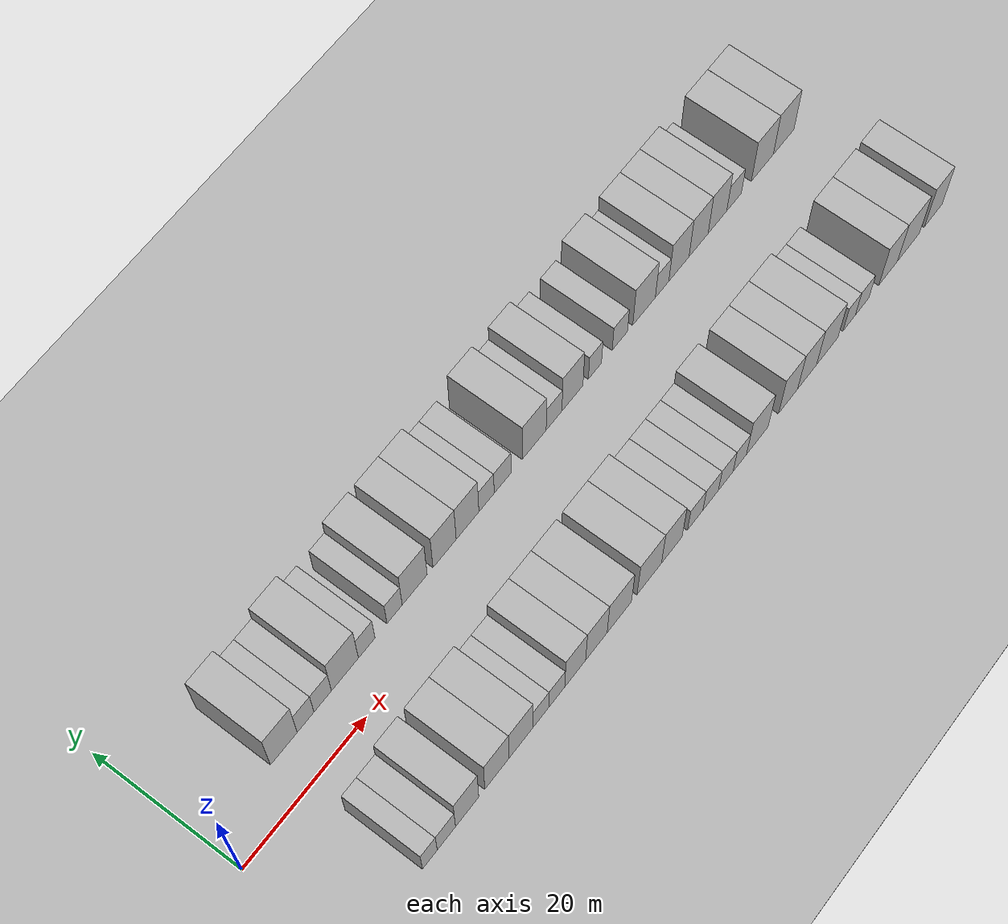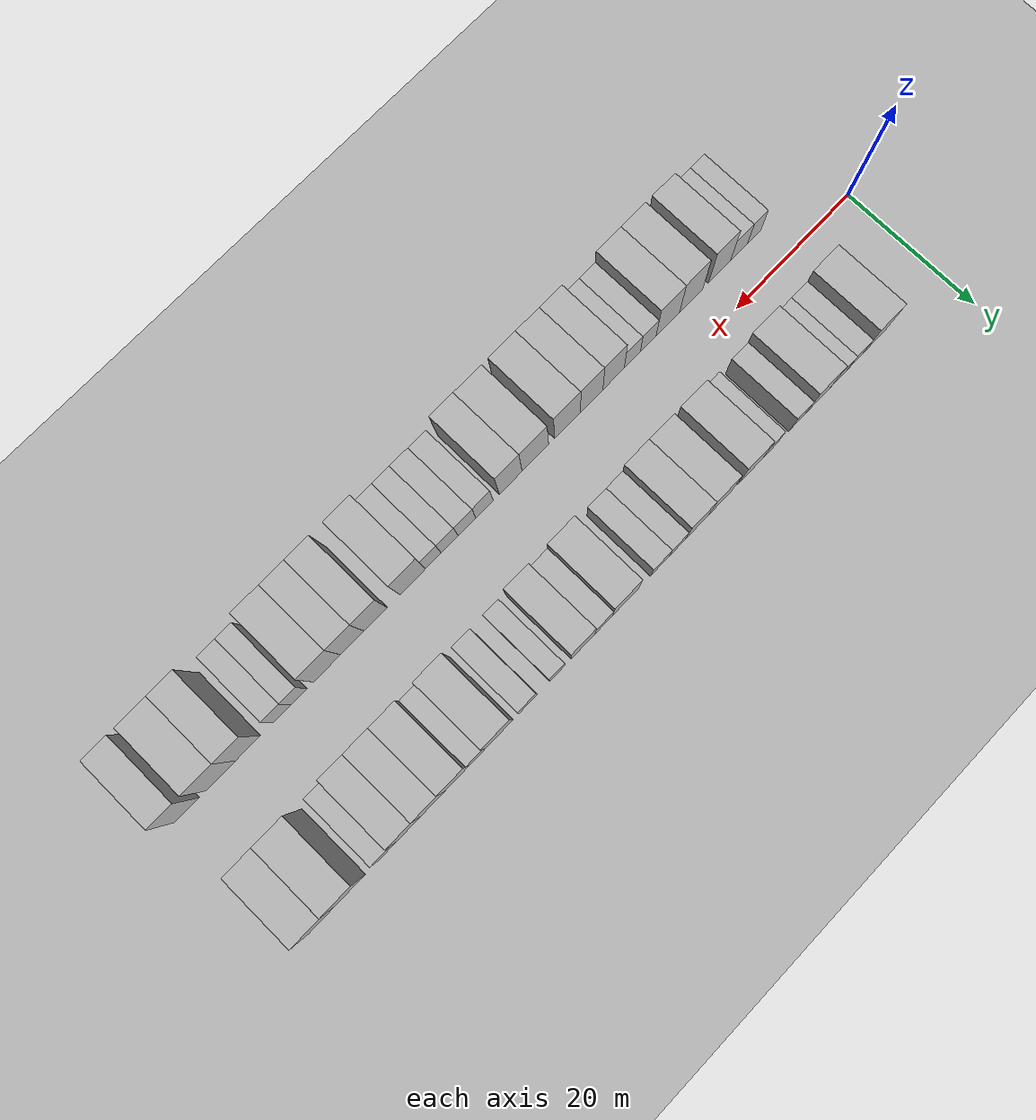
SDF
<sdf version="1.6">
 <world name="default">
  <include><name>ground_plane_1</name><uri>model://HANNAS_ground_plane</uri></include>
  <include>
   <name>ground_plane_2</name>
   <uri>model://HANNAS_ground_plane</uri>
   <pose>100 0 0  0 0 0</pose>
  </include>
  <model name="building_1">
   <static>1</static>
   <pose>12.1485 9.5000 0 0.000000 0.000000 1.570796</pose>
   <link name="link">
    <pose>0 0 4.50 0 0 0</pose>
    <collision name="collision"><geometry><box><size>10.0000 4.2969 9.0000</size></box></geometry></collision>
    <visual name="visual">
     <cast_shadows>0</cast_shadows>
     <geometry><box><size>10.0000 4.2969 9.0000</size></box></geometry>
     <material>
      <script>
       <uri>model://HANNAS_wall/materials/scripts</uri>
       <uri>model://HANNAS_wall/materials/textures</uri>
       <name>vrc/HANNAS_wall</name>
      </script>
     </material>
    </visual>
   </link>
  </model>
  <model name="building_2">
   <static>1</static>
   <pose>15.6557 9.5000 0 0.000000 0.000000 1.570796</pose>
   <link name="link">
    <pose>0 0 3.00 0 0 0</pose>
    <collision name="collision"><geometry><box><size>10.0000 2.7174 6.0000</size></box></geometry></collision>
    <visual name="visual">
     <cast_shadows>0</cast_shadows>
     <geometry><box><size>10.0000 2.7174 6.0000</size></box></geometry>
     <material>
      <script>
       <uri>model://HANNAS_wall/materials/scripts</uri>
       <uri>model://HANNAS_wall/materials/textures</uri>
       <name>vrc/HANNAS_wall</name>
      </script>
     </material>
    </visual>
   </link>
  </model>
  <model name="building_3">
   <static>1</static>
   <pose>18.4392 9.5000 0 0.000000 0.000000 1.570796</pose>
   <link name="link">
    <pose>0 0 3.00 0 0 0</pose>
    <collision name="collision"><geometry><box><size>10.0000 2.8497 6.0000</size></box></geometry></collision>
    <visual name="visual">
     <cast_shadows>0</cast_shadows>
     <geometry><box><size>10.0000 2.8497 6.0000</size></box></geometry>
     <material>
      <script>
       <uri>model://HANNAS_wall/materials/scripts</uri>
       <uri>model://HANNAS_wall/materials/textures</uri>
       <name>vrc/HANNAS_wall</name>
      </script>
     </material>
    </visual>
   </link>
  </model>
  <model name="building_4">
   <static>1</static>
   <pose>22.0854 9.5000 0 0.000000 0.000000 1.570796</pose>
   <link name="link">
    <pose>0 0 4.50 0 0 0</pose>
    <collision name="collision"><geometry><box><size>10.0000 4.4425 9.0000</size></box></geometry></collision>
    <visual name="visual">
     <cast_shadows>0</cast_shadows>
     <geometry><box><size>10.0000 4.4425 9.0000</size></box></geometry>
     <material>
      <script>
       <uri>model://HANNAS_wall/materials/scripts</uri>
       <uri>model://HANNAS_wall/materials/textures</uri>
       <name>vrc/HANNAS_wall</name>
      </script>
     </material>
    </visual>
   </link>
  </model>
  <model name="building_5">
   <static>1</static>
   <pose>25.6878 9.5000 0 0.000000 0.000000 1.570796</pose>
   <link name="link">
    <pose>0 0 3.00 0 0 0</pose>
    <collision name="collision"><geometry><box><size>10.0000 2.7624 6.0000</size></box></geometry></collision>
    <visual name="visual">
     <cast_shadows>0</cast_shadows>
     <geometry><box><size>10.0000 2.7624 6.0000</size></box></geometry>
     <material>
      <script>
       <uri>model://HANNAS_wall/materials/scripts</uri>
       <uri>model://HANNAS_wall/materials/textures</uri>
       <name>vrc/HANNAS_wall</name>
      </script>
     </material>
    </visual>
   </link>
  </model>
  <model name="building_6">
   <static>1</static>
   <pose>30.3585 9.5000 0 0.000000 0.000000 1.570796</pose>
   <link name="link">
    <pose>0 0 3.00 0 0 0</pose>
    <collision name="collision"><geometry><box><size>10.0000 2.5788 6.0000</size></box></geometry></collision>
    <visual name="visual">
     <cast_shadows>0</cast_shadows>
     <geometry><box><size>10.0000 2.5788 6.0000</size></box></geometry>
     <material>
      <script>
       <uri>model://HANNAS_wall/materials/scripts</uri>
       <uri>model://HANNAS_wall/materials/textures</uri>
       <name>vrc/HANNAS_wall</name>
      </script>
     </material>
    </visual>
   </link>
  </model>
  <model name="building_7">
   <static>1</static>
   <pose>33.7688 9.5000 0 0.000000 0.000000 1.570796</pose>
   <link name="link">
    <pose>0 0 4.50 0 0 0</pose>
    <collision name="collision"><geometry><box><size>10.0000 4.2418 9.0000</size></box></geometry></collision>
    <visual name="visual">
     <cast_shadows>0</cast_shadows>
     <geometry><box><size>10.0000 4.2418 9.0000</size></box></geometry>
     <material>
      <script>
       <uri>model://HANNAS_wall/materials/scripts</uri>
       <uri>model://HANNAS_wall/materials/textures</uri>
       <name>vrc/HANNAS_wall</name>
      </script>
     </material>
    </visual>
   </link>
  </model>
  <model name="building_8">
   <static>1</static>
   <pose>38.8870 9.5000 0 0.000000 0.000000 1.570796</pose>
   <link name="link">
    <pose>0 0 4.50 0 0 0</pose>
    <collision name="collision"><geometry><box><size>10.0000 3.9947 9.0000</size></box></geometry></collision>
    <visual name="visual">
     <cast_shadows>0</cast_shadows>
     <geometry><box><size>10.0000 3.9947 9.0000</size></box></geometry>
     <material>
      <script>
       <uri>model://HANNAS_wall/materials/scripts</uri>
       <uri>model://HANNAS_wall/materials/textures</uri>
       <name>vrc/HANNAS_wall</name>
      </script>
     </material>
    </visual>
   </link>
  </model>
  <model name="building_9">
   <static>1</static>
   <pose>42.8608 9.5000 0 0.000000 0.000000 1.570796</pose>
   <link name="link">
    <pose>0 0 4.50 0 0 0</pose>
    <collision name="collision"><geometry><box><size>10.0000 3.9528 9.0000</size></box></geometry></collision>
    <visual name="visual">
     <cast_shadows>0</cast_shadows>
     <geometry><box><size>10.0000 3.9528 9.0000</size></box></geometry>
     <material>
      <script>
       <uri>model://HANNAS_wall/materials/scripts</uri>
       <uri>model://HANNAS_wall/materials/textures</uri>
       <name>vrc/HANNAS_wall</name>
      </script>
     </material>
    </visual>
   </link>
  </model>
  <model name="building_10">
   <static>1</static>
   <pose>46.1827 9.5000 0 0.000000 0.000000 1.570796</pose>
   <link name="link">
    <pose>0 0 3.00 0 0 0</pose>
    <collision name="collision"><geometry><box><size>10.0000 2.6912 6.0000</size></box></geometry></collision>
    <visual name="visual">
     <cast_shadows>0</cast_shadows>
     <geometry><box><size>10.0000 2.6912 6.0000</size></box></geometry>
     <material>
      <script>
       <uri>model://HANNAS_wall/materials/scripts</uri>
       <uri>model://HANNAS_wall/materials/textures</uri>
       <name>vrc/HANNAS_wall</name>
      </script>
     </material>
    </visual>
   </link>
  </model>
  <model name="building_11">
   <static>1</static>
   <pose>49.0226 9.5000 0 0.000000 0.000000 1.570796</pose>
   <link name="link">
    <pose>0 0 3.00 0 0 0</pose>
    <collision name="collision"><geometry><box><size>10.0000 2.9886 6.0000</size></box></geometry></collision>
    <visual name="visual">
     <cast_shadows>0</cast_shadows>
     <geometry><box><size>10.0000 2.9886 6.0000</size></box></geometry>
     <material>
      <script>
       <uri>model://HANNAS_wall/materials/scripts</uri>
       <uri>model://HANNAS_wall/materials/textures</uri>
       <name>vrc/HANNAS_wall</name>
      </script>
     </material>
    </visual>
   </link>
  </model>
  <model name="building_12">
   <static>1</static>
   <pose>54.6593 9.5000 0 0.000000 0.000000 1.570796</pose>
   <link name="link">
    <pose>0 0 4.50 0 0 0</pose>
    <collision name="collision"><geometry><box><size>10.0000 4.2849 9.0000</size></box></geometry></collision>
    <visual name="visual">
     <cast_shadows>0</cast_shadows>
     <geometry><box><size>10.0000 4.2849 9.0000</size></box></geometry>
     <material>
      <script>
       <uri>model://HANNAS_wall/materials/scripts</uri>
       <uri>model://HANNAS_wall/materials/textures</uri>
       <name>vrc/HANNAS_wall</name>
      </script>
     </material>
    </visual>
   </link>
  </model>
  <model name="building_13">
   <static>1</static>
   <pose>58.2277 9.5000 0 0.000000 0.000000 1.570796</pose>
   <link name="link">
    <pose>0 0 3.00 0 0 0</pose>
    <collision name="collision"><geometry><box><size>10.0000 2.8518 6.0000</size></box></geometry></collision>
    <visual name="visual">
     <cast_shadows>0</cast_shadows>
     <geometry><box><size>10.0000 2.8518 6.0000</size></box></geometry>
     <material>
      <script>
       <uri>model://HANNAS_wall/materials/scripts</uri>
       <uri>model://HANNAS_wall/materials/textures</uri>
       <name>vrc/HANNAS_wall</name>
      </script>
     </material>
    </visual>
   </link>
  </model>
  <model name="building_14">
   <static>1</static>
   <pose>61.5808 9.5000 0 0.000000 0.000000 1.570796</pose>
   <link name="link">
    <pose>0 0 4.50 0 0 0</pose>
    <collision name="collision"><geometry><box><size>10.0000 3.8543 9.0000</size></box></geometry></collision>
    <visual name="visual">
     <cast_shadows>0</cast_shadows>
     <geometry><box><size>10.0000 3.8543 9.0000</size></box></geometry>
     <material>
      <script>
       <uri>model://HANNAS_wall/materials/scripts</uri>
       <uri>model://HANNAS_wall/materials/textures</uri>
       <name>vrc/HANNAS_wall</name>
      </script>
     </material>
    </visual>
   </link>
  </model>
  <model name="building_15">
   <static>1</static>
   <pose>65.7186 9.5000 0 0.000000 0.000000 1.570796</pose>
   <link name="link">
    <pose>0 0 3.00 0 0 0</pose>
    <collision name="collision"><geometry><box><size>10.0000 2.4212 6.0000</size></box></geometry></collision>
    <visual name="visual">
     <cast_shadows>0</cast_shadows>
     <geometry><box><size>10.0000 2.4212 6.0000</size></box></geometry>
     <material>
      <script>
       <uri>model://HANNAS_wall/materials/scripts</uri>
       <uri>model://HANNAS_wall/materials/textures</uri>
       <name>vrc/HANNAS_wall</name>
      </script>
     </material>
    </visual>
   </link>
  </model>
  <model name="building_16">
   <static>1</static>
   <pose>70.3492 9.5000 0 0.000000 0.000000 1.570796</pose>
   <link name="link">
    <pose>0 0 3.00 0 0 0</pose>
    <collision name="collision"><geometry><box><size>10.0000 2.8400 6.0000</size></box></geometry></collision>
    <visual name="visual">
     <cast_shadows>0</cast_shadows>
     <geometry><box><size>10.0000 2.8400 6.0000</size></box></geometry>
     <material>
      <script>
       <uri>model://HANNAS_wall/materials/scripts</uri>
       <uri>model://HANNAS_wall/materials/textures</uri>
       <name>vrc/HANNAS_wall</name>
      </script>
     </material>
    </visual>
   </link>
  </model>
  <model name="building_17">
   <static>1</static>
   <pose>74.9035 9.5000 0 0.000000 0.000000 1.570796</pose>
   <link name="link">
    <pose>0 0 4.50 0 0 0</pose>
    <collision name="collision"><geometry><box><size>10.0000 4.2686 9.0000</size></box></geometry></collision>
    <visual name="visual">
     <cast_shadows>0</cast_shadows>
     <geometry><box><size>10.0000 4.2686 9.0000</size></box></geometry>
     <material>
      <script>
       <uri>model://HANNAS_wall/materials/scripts</uri>
       <uri>model://HANNAS_wall/materials/textures</uri>
       <name>vrc/HANNAS_wall</name>
      </script>
     </material>
    </visual>
   </link>
  </model>
  <model name="building_18">
   <static>1</static>
   <pose>78.3266 9.5000 0 0.000000 0.000000 1.570796</pose>
   <link name="link">
    <pose>0 0 3.00 0 0 0</pose>
    <collision name="collision"><geometry><box><size>10.0000 2.5777 6.0000</size></box></geometry></collision>
    <visual name="visual">
     <cast_shadows>0</cast_shadows>
     <geometry><box><size>10.0000 2.5777 6.0000</size></box></geometry>
     <material>
      <script>
       <uri>model://HANNAS_wall/materials/scripts</uri>
       <uri>model://HANNAS_wall/materials/textures</uri>
       <name>vrc/HANNAS_wall</name>
      </script>
     </material>
    </visual>
   </link>
  </model>
  <model name="building_19">
   <static>1</static>
   <pose>81.5625 9.5000 0 0.000000 0.000000 1.570796</pose>
   <link name="link">
    <pose>0 0 4.50 0 0 0</pose>
    <collision name="collision"><geometry><box><size>10.0000 3.8939 9.0000</size></box></geometry></collision>
    <visual name="visual">
     <cast_shadows>0</cast_shadows>
     <geometry><box><size>10.0000 3.8939 9.0000</size></box></geometry>
     <material>
      <script>
       <uri>model://HANNAS_wall/materials/scripts</uri>
       <uri>model://HANNAS_wall/materials/textures</uri>
       <name>vrc/HANNAS_wall</name>
      </script>
     </material>
    </visual>
   </link>
  </model>
  <model name="building_20">
   <static>1</static>
   <pose>85.3593 9.5000 0 0.000000 0.000000 1.570796</pose>
   <link name="link">
    <pose>0 0 4.50 0 0 0</pose>
    <collision name="collision"><geometry><box><size>10.0000 3.6998 9.0000</size></box></geometry></collision>
    <visual name="visual">
     <cast_shadows>0</cast_shadows>
     <geometry><box><size>10.0000 3.6998 9.0000</size></box></geometry>
     <material>
      <script>
       <uri>model://HANNAS_wall/materials/scripts</uri>
       <uri>model://HANNAS_wall/materials/textures</uri>
       <name>vrc/HANNAS_wall</name>
      </script>
     </material>
    </visual>
   </link>
  </model>
  <model name="building_21">
   <static>1</static>
   <pose>89.0442 9.5000 0 0.000000 0.000000 1.570796</pose>
   <link name="link">
    <pose>0 0 4.50 0 0 0</pose>
    <collision name="collision"><geometry><box><size>10.0000 3.6701 9.0000</size></box></geometry></collision>
    <visual name="visual">
     <cast_shadows>0</cast_shadows>
     <geometry><box><size>10.0000 3.6701 9.0000</size></box></geometry>
     <material>
      <script>
       <uri>model://HANNAS_wall/materials/scripts</uri>
       <uri>model://HANNAS_wall/materials/textures</uri>
       <name>vrc/HANNAS_wall</name>
      </script>
     </material>
    </visual>
   </link>
  </model>
  <model name="building_22">
   <static>1</static>
   <pose>92.3200 9.5000 0 0.000000 0.000000 1.570796</pose>
   <link name="link">
    <pose>0 0 3.00 0 0 0</pose>
    <collision name="collision"><geometry><box><size>10.0000 2.8814 6.0000</size></box></geometry></collision>
    <visual name="visual">
     <cast_shadows>0</cast_shadows>
     <geometry><box><size>10.0000 2.8814 6.0000</size></box></geometry>
     <material>
      <script>
       <uri>model://HANNAS_wall/materials/scripts</uri>
       <uri>model://HANNAS_wall/materials/textures</uri>
       <name>vrc/HANNAS_wall</name>
      </script>
     </material>
    </visual>
   </link>
  </model>
  <model name="building_23">
   <static>1</static>
   <pose>97.9645 9.5000 0 0.000000 0.000000 1.570796</pose>
   <link name="link">
    <pose>0 0 4.50 0 0 0</pose>
    <collision name="collision"><geometry><box><size>10.0000 4.4076 9.0000</size></box></geometry></collision>
    <visual name="visual">
     <cast_shadows>0</cast_shadows>
     <geometry><box><size>10.0000 4.4076 9.0000</size></box></geometry>
     <material>
      <script>
       <uri>model://HANNAS_wall/materials/scripts</uri>
       <uri>model://HANNAS_wall/materials/textures</uri>
       <name>vrc/HANNAS_wall</name>
      </script>
     </material>
    </visual>
   </link>
  </model>
  <model name="building_24">
   <static>1</static>
   <pose>102.2498 9.5000 0 0.000000 0.000000 1.570796</pose>
   <link name="link">
    <pose>0 0 4.50 0 0 0</pose>
    <collision name="collision"><geometry><box><size>10.0000 4.1629 9.0000</size></box></geometry></collision>
    <visual name="visual">
     <cast_shadows>0</cast_shadows>
     <geometry><box><size>10.0000 4.1629 9.0000</size></box></geometry>
     <material>
      <script>
       <uri>model://HANNAS_wall/materials/scripts</uri>
       <uri>model://HANNAS_wall/materials/textures</uri>
       <name>vrc/HANNAS_wall</name>
      </script>
     </material>
    </visual>
   </link>
  </model>
  <model name="building_50">
   <static>1</static>
   <pose>12.2003 -9.5000 0 0.000000 0.000000 1.570796</pose>
   <link name="link">
    <pose>0 0 3.00 0 0 0</pose>
    <collision name="collision"><geometry><box><size>10.0000 2.4007 6.0000</size></box></geometry></collision>
    <visual name="visual">
     <cast_shadows>0</cast_shadows>
     <geometry><box><size>10.0000 2.4007 6.0000</size></box></geometry>
     <material>
      <script>
       <uri>model://HANNAS_wall/materials/scripts</uri>
       <uri>model://HANNAS_wall/materials/textures</uri>
       <name>vrc/HANNAS_wall</name>
      </script>
     </material>
    </visual>
   </link>
  </model>
  <model name="building_51">
   <static>1</static>
   <pose>14.8979 -9.5000 0 0.000000 0.000000 1.570796</pose>
   <link name="link">
    <pose>0 0 3.00 0 0 0</pose>
    <collision name="collision"><geometry><box><size>10.0000 2.9944 6.0000</size></box></geometry></collision>
    <visual name="visual">
     <cast_shadows>0</cast_shadows>
     <geometry><box><size>10.0000 2.9944 6.0000</size></box></geometry>
     <material>
      <script>
       <uri>model://HANNAS_wall/materials/scripts</uri>
       <uri>model://HANNAS_wall/materials/textures</uri>
       <name>vrc/HANNAS_wall</name>
      </script>
     </material>
    </visual>
   </link>
  </model>
  <model name="building_52">
   <static>1</static>
   <pose>18.3170 -9.5000 0 0.000000 0.000000 1.570796</pose>
   <link name="link">
    <pose>0 0 4.50 0 0 0</pose>
    <collision name="collision"><geometry><box><size>10.0000 3.8438 9.0000</size></box></geometry></collision>
    <visual name="visual">
     <cast_shadows>0</cast_shadows>
     <geometry><box><size>10.0000 3.8438 9.0000</size></box></geometry>
     <material>
      <script>
       <uri>model://HANNAS_wall/materials/scripts</uri>
       <uri>model://HANNAS_wall/materials/textures</uri>
       <name>vrc/HANNAS_wall</name>
      </script>
     </material>
    </visual>
   </link>
  </model>
  <model name="building_53">
   <static>1</static>
   <pose>23.2656 -9.5000 0 0.000000 0.000000 1.570796</pose>
   <link name="link">
    <pose>0 0 4.50 0 0 0</pose>
    <collision name="collision"><geometry><box><size>10.0000 4.0535 9.0000</size></box></geometry></collision>
    <visual name="visual">
     <cast_shadows>0</cast_shadows>
     <geometry><box><size>10.0000 4.0535 9.0000</size></box></geometry>
     <material>
      <script>
       <uri>model://HANNAS_wall/materials/scripts</uri>
       <uri>model://HANNAS_wall/materials/textures</uri>
       <name>vrc/HANNAS_wall</name>
      </script>
     </material>
    </visual>
   </link>
  </model>
  <model name="building_54">
   <static>1</static>
   <pose>27.3266 -9.5000 0 0.000000 0.000000 1.570796</pose>
   <link name="link">
    <pose>0 0 4.50 0 0 0</pose>
    <collision name="collision"><geometry><box><size>10.0000 4.0686 9.0000</size></box></geometry></collision>
    <visual name="visual">
     <cast_shadows>0</cast_shadows>
     <geometry><box><size>10.0000 4.0686 9.0000</size></box></geometry>
     <material>
      <script>
       <uri>model://HANNAS_wall/materials/scripts</uri>
       <uri>model://HANNAS_wall/materials/textures</uri>
       <name>vrc/HANNAS_wall</name>
      </script>
     </material>
    </visual>
   </link>
  </model>
  <model name="building_55">
   <static>1</static>
   <pose>30.7042 -9.5000 0 0.000000 0.000000 1.570796</pose>
   <link name="link">
    <pose>0 0 3.00 0 0 0</pose>
    <collision name="collision"><geometry><box><size>10.0000 2.6865 6.0000</size></box></geometry></collision>
    <visual name="visual">
     <cast_shadows>0</cast_shadows>
     <geometry><box><size>10.0000 2.6865 6.0000</size></box></geometry>
     <material>
      <script>
       <uri>model://HANNAS_wall/materials/scripts</uri>
       <uri>model://HANNAS_wall/materials/textures</uri>
       <name>vrc/HANNAS_wall</name>
      </script>
     </material>
    </visual>
   </link>
  </model>
  <model name="building_56">
   <static>1</static>
   <pose>33.4240 -9.5000 0 0.000000 0.000000 1.570796</pose>
   <link name="link">
    <pose>0 0 3.00 0 0 0</pose>
    <collision name="collision"><geometry><box><size>10.0000 2.7532 6.0000</size></box></geometry></collision>
    <visual name="visual">
     <cast_shadows>0</cast_shadows>
     <geometry><box><size>10.0000 2.7532 6.0000</size></box></geometry>
     <material>
      <script>
       <uri>model://HANNAS_wall/materials/scripts</uri>
       <uri>model://HANNAS_wall/materials/textures</uri>
       <name>vrc/HANNAS_wall</name>
      </script>
     </material>
    </visual>
   </link>
  </model>
  <model name="building_57">
   <static>1</static>
   <pose>36.6123 -9.5000 0 0.000000 0.000000 1.570796</pose>
   <link name="link">
    <pose>0 0 4.50 0 0 0</pose>
    <collision name="collision"><geometry><box><size>10.0000 3.6234 9.0000</size></box></geometry></collision>
    <visual name="visual">
     <cast_shadows>0</cast_shadows>
     <geometry><box><size>10.0000 3.6234 9.0000</size></box></geometry>
     <material>
      <script>
       <uri>model://HANNAS_wall/materials/scripts</uri>
       <uri>model://HANNAS_wall/materials/textures</uri>
       <name>vrc/HANNAS_wall</name>
      </script>
     </material>
    </visual>
   </link>
  </model>
  <model name="building_58">
   <static>1</static>
   <pose>40.3140 -9.5000 0 0.000000 0.000000 1.570796</pose>
   <link name="link">
    <pose>0 0 4.50 0 0 0</pose>
    <collision name="collision"><geometry><box><size>10.0000 3.7800 9.0000</size></box></geometry></collision>
    <visual name="visual">
     <cast_shadows>0</cast_shadows>
     <geometry><box><size>10.0000 3.7800 9.0000</size></box></geometry>
     <material>
      <script>
       <uri>model://HANNAS_wall/materials/scripts</uri>
       <uri>model://HANNAS_wall/materials/textures</uri>
       <name>vrc/HANNAS_wall</name>
      </script>
     </material>
    </visual>
   </link>
  </model>
  <model name="building_59">
   <static>1</static>
   <pose>44.3622 -9.5000 0 0.000000 0.000000 1.570796</pose>
   <link name="link">
    <pose>0 0 4.50 0 0 0</pose>
    <collision name="collision"><geometry><box><size>10.0000 4.3164 9.0000</size></box></geometry></collision>
    <visual name="visual">
     <cast_shadows>0</cast_shadows>
     <geometry><box><size>10.0000 4.3164 9.0000</size></box></geometry>
     <material>
      <script>
       <uri>model://HANNAS_wall/materials/scripts</uri>
       <uri>model://HANNAS_wall/materials/textures</uri>
       <name>vrc/HANNAS_wall</name>
      </script>
     </material>
    </visual>
   </link>
  </model>
  <model name="building_60">
   <static>1</static>
   <pose>49.7163 -9.5000 0 0.000000 0.000000 1.570796</pose>
   <link name="link">
    <pose>0 0 4.50 0 0 0</pose>
    <collision name="collision"><geometry><box><size>10.0000 4.3918 9.0000</size></box></geometry></collision>
    <visual name="visual">
     <cast_shadows>0</cast_shadows>
     <geometry><box><size>10.0000 4.3918 9.0000</size></box></geometry>
     <material>
      <script>
       <uri>model://HANNAS_wall/materials/scripts</uri>
       <uri>model://HANNAS_wall/materials/textures</uri>
       <name>vrc/HANNAS_wall</name>
      </script>
     </material>
    </visual>
   </link>
  </model>
  <model name="building_61">
   <static>1</static>
   <pose>53.7856 -9.5000 0 0.000000 0.000000 1.570796</pose>
   <link name="link">
    <pose>0 0 4.50 0 0 0</pose>
    <collision name="collision"><geometry><box><size>10.0000 3.7468 9.0000</size></box></geometry></collision>
    <visual name="visual">
     <cast_shadows>0</cast_shadows>
     <geometry><box><size>10.0000 3.7468 9.0000</size></box></geometry>
     <material>
      <script>
       <uri>model://HANNAS_wall/materials/scripts</uri>
       <uri>model://HANNAS_wall/materials/textures</uri>
       <name>vrc/HANNAS_wall</name>
      </script>
     </material>
    </visual>
   </link>
  </model>
  <model name="building_62">
   <static>1</static>
   <pose>58.0690 -9.5000 0 0.000000 0.000000 1.570796</pose>
   <link name="link">
    <pose>0 0 3.00 0 0 0</pose>
    <collision name="collision"><geometry><box><size>10.0000 2.8201 6.0000</size></box></geometry></collision>
    <visual name="visual">
     <cast_shadows>0</cast_shadows>
     <geometry><box><size>10.0000 2.8201 6.0000</size></box></geometry>
     <material>
      <script>
       <uri>model://HANNAS_wall/materials/scripts</uri>
       <uri>model://HANNAS_wall/materials/textures</uri>
       <name>vrc/HANNAS_wall</name>
      </script>
     </material>
    </visual>
   </link>
  </model>
  <model name="building_63">
   <static>1</static>
   <pose>60.9207 -9.5000 0 0.000000 0.000000 1.570796</pose>
   <link name="link">
    <pose>0 0 3.00 0 0 0</pose>
    <collision name="collision"><geometry><box><size>10.0000 2.8832 6.0000</size></box></geometry></collision>
    <visual name="visual">
     <cast_shadows>0</cast_shadows>
     <geometry><box><size>10.0000 2.8832 6.0000</size></box></geometry>
     <material>
      <script>
       <uri>model://HANNAS_wall/materials/scripts</uri>
       <uri>model://HANNAS_wall/materials/textures</uri>
       <name>vrc/HANNAS_wall</name>
      </script>
     </material>
    </visual>
   </link>
  </model>
  <model name="building_64">
   <static>1</static>
   <pose>63.7338 -9.5000 0 0.000000 0.000000 1.570796</pose>
   <link name="link">
    <pose>0 0 3.00 0 0 0</pose>
    <collision name="collision"><geometry><box><size>10.0000 2.7431 6.0000</size></box></geometry></collision>
    <visual name="visual">
     <cast_shadows>0</cast_shadows>
     <geometry><box><size>10.0000 2.7431 6.0000</size></box></geometry>
     <material>
      <script>
       <uri>model://HANNAS_wall/materials/scripts</uri>
       <uri>model://HANNAS_wall/materials/textures</uri>
       <name>vrc/HANNAS_wall</name>
      </script>
     </material>
    </visual>
   </link>
  </model>
  <model name="building_65">
   <static>1</static>
   <pose>66.3600 -9.5000 0 0.000000 0.000000 1.570796</pose>
   <link name="link">
    <pose>0 0 3.00 0 0 0</pose>
    <collision name="collision"><geometry><box><size>10.0000 2.5092 6.0000</size></box></geometry></collision>
    <visual name="visual">
     <cast_shadows>0</cast_shadows>
     <geometry><box><size>10.0000 2.5092 6.0000</size></box></geometry>
     <material>
      <script>
       <uri>model://HANNAS_wall/materials/scripts</uri>
       <uri>model://HANNAS_wall/materials/textures</uri>
       <name>vrc/HANNAS_wall</name>
      </script>
     </material>
    </visual>
   </link>
  </model>
  <model name="building_66">
   <static>1</static>
   <pose>69.6719 -9.5000 0 0.000000 0.000000 1.570796</pose>
   <link name="link">
    <pose>0 0 4.50 0 0 0</pose>
    <collision name="collision"><geometry><box><size>10.0000 4.1146 9.0000</size></box></geometry></collision>
    <visual name="visual">
     <cast_shadows>0</cast_shadows>
     <geometry><box><size>10.0000 4.1146 9.0000</size></box></geometry>
     <material>
      <script>
       <uri>model://HANNAS_wall/materials/scripts</uri>
       <uri>model://HANNAS_wall/materials/textures</uri>
       <name>vrc/HANNAS_wall</name>
      </script>
     </material>
    </visual>
   </link>
  </model>
  <model name="building_67">
   <static>1</static>
   <pose>75.5628 -9.5000 0 0.000000 0.000000 1.570796</pose>
   <link name="link">
    <pose>0 0 4.50 0 0 0</pose>
    <collision name="collision"><geometry><box><size>10.0000 3.6673 9.0000</size></box></geometry></collision>
    <visual name="visual">
     <cast_shadows>0</cast_shadows>
     <geometry><box><size>10.0000 3.6673 9.0000</size></box></geometry>
     <material>
      <script>
       <uri>model://HANNAS_wall/materials/scripts</uri>
       <uri>model://HANNAS_wall/materials/textures</uri>
       <name>vrc/HANNAS_wall</name>
      </script>
     </material>
    </visual>
   </link>
  </model>
  <model name="building_68">
   <static>1</static>
   <pose>79.2327 -9.5000 0 0.000000 0.000000 1.570796</pose>
   <link name="link">
    <pose>0 0 4.50 0 0 0</pose>
    <collision name="collision"><geometry><box><size>10.0000 3.6726 9.0000</size></box></geometry></collision>
    <visual name="visual">
     <cast_shadows>0</cast_shadows>
     <geometry><box><size>10.0000 3.6726 9.0000</size></box></geometry>
     <material>
      <script>
       <uri>model://HANNAS_wall/materials/scripts</uri>
       <uri>model://HANNAS_wall/materials/textures</uri>
       <name>vrc/HANNAS_wall</name>
      </script>
     </material>
    </visual>
   </link>
  </model>
  <model name="building_69">
   <static>1</static>
   <pose>83.1784 -9.5000 0 0.000000 0.000000 1.570796</pose>
   <link name="link">
    <pose>0 0 4.50 0 0 0</pose>
    <collision name="collision"><geometry><box><size>10.0000 4.2188 9.0000</size></box></geometry></collision>
    <visual name="visual">
     <cast_shadows>0</cast_shadows>
     <geometry><box><size>10.0000 4.2188 9.0000</size></box></geometry>
     <material>
      <script>
       <uri>model://HANNAS_wall/materials/scripts</uri>
       <uri>model://HANNAS_wall/materials/textures</uri>
       <name>vrc/HANNAS_wall</name>
      </script>
     </material>
    </visual>
   </link>
  </model>
  <model name="building_70">
   <static>1</static>
   <pose>87.5057 -9.5000 0 0.000000 0.000000 1.570796</pose>
   <link name="link">
    <pose>0 0 3.00 0 0 0</pose>
    <collision name="collision"><geometry><box><size>10.0000 2.4358 6.0000</size></box></geometry></collision>
    <visual name="visual">
     <cast_shadows>0</cast_shadows>
     <geometry><box><size>10.0000 2.4358 6.0000</size></box></geometry>
     <material>
      <script>
       <uri>model://HANNAS_wall/materials/scripts</uri>
       <uri>model://HANNAS_wall/materials/textures</uri>
       <name>vrc/HANNAS_wall</name>
      </script>
     </material>
    </visual>
   </link>
  </model>
  <model name="building_71">
   <static>1</static>
   <pose>90.0866 -9.5000 0 0.000000 0.000000 1.570796</pose>
   <link name="link">
    <pose>0 0 3.00 0 0 0</pose>
    <collision name="collision"><geometry><box><size>10.0000 2.7261 6.0000</size></box></geometry></collision>
    <visual name="visual">
     <cast_shadows>0</cast_shadows>
     <geometry><box><size>10.0000 2.7261 6.0000</size></box></geometry>
     <material>
      <script>
       <uri>model://HANNAS_wall/materials/scripts</uri>
       <uri>model://HANNAS_wall/materials/textures</uri>
       <name>vrc/HANNAS_wall</name>
      </script>
     </material>
    </visual>
   </link>
  </model>
  <model name="building_72">
   <static>1</static>
   <pose>95.3455 -9.5000 0 0.000000 0.000000 1.570796</pose>
   <link name="link">
    <pose>0 0 4.50 0 0 0</pose>
    <collision name="collision"><geometry><box><size>10.0000 3.7916 9.0000</size></box></geometry></collision>
    <visual name="visual">
     <cast_shadows>0</cast_shadows>
     <geometry><box><size>10.0000 3.7916 9.0000</size></box></geometry>
     <material>
      <script>
       <uri>model://HANNAS_wall/materials/scripts</uri>
       <uri>model://HANNAS_wall/materials/textures</uri>
       <name>vrc/HANNAS_wall</name>
      </script>
     </material>
    </visual>
   </link>
  </model>
  <model name="building_73">
   <static>1</static>
   <pose>99.4895 -9.5000 0 0.000000 0.000000 1.570796</pose>
   <link name="link">
    <pose>0 0 4.50 0 0 0</pose>
    <collision name="collision"><geometry><box><size>10.0000 4.4966 9.0000</size></box></geometry></collision>
    <visual name="visual">
     <cast_shadows>0</cast_shadows>
     <geometry><box><size>10.0000 4.4966 9.0000</size></box></geometry>
     <material>
      <script>
       <uri>model://HANNAS_wall/materials/scripts</uri>
       <uri>model://HANNAS_wall/materials/textures</uri>
       <name>vrc/HANNAS_wall</name>
      </script>
     </material>
    </visual>
   </link>
  </model>
  <model name="building_74">
   <static>1</static>
   <pose>104.5805 -9.5000 0 0.000000 0.000000 1.570796</pose>
   <link name="link">
    <pose>0 0 4.50 0 0 0</pose>
    <collision name="collision"><geometry><box><size>10.0000 3.6854 9.0000</size></box></geometry></collision>
    <visual name="visual">
     <cast_shadows>0</cast_shadows>
     <geometry><box><size>10.0000 3.6854 9.0000</size></box></geometry>
     <material>
      <script>
       <uri>model://HANNAS_wall/materials/scripts</uri>
       <uri>model://HANNAS_wall/materials/textures</uri>
       <name>vrc/HANNAS_wall</name>
      </script>
     </material>
    </visual>
   </link>
  </model>
 </world>
</sdf>
